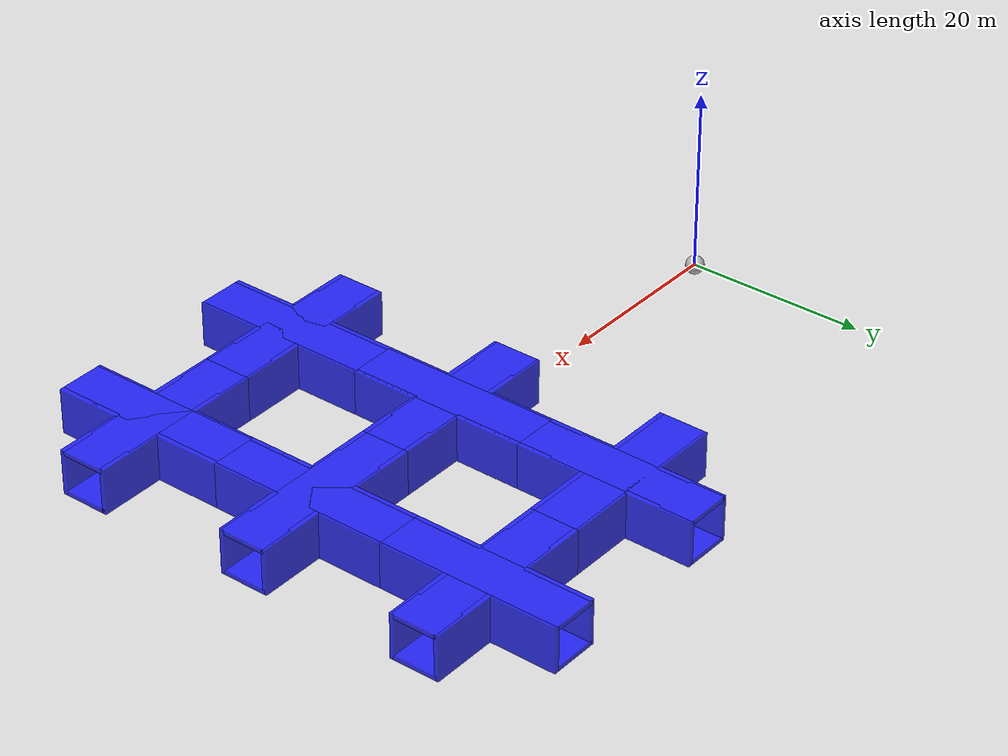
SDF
<?xml version="1.0" ?>
<sdf version="1.6">
  <world name="levels">
    <physics name="fast" type="ignored">
      <real_time_factor>0</real_time_factor>
    </physics>

    <plugin
      filename="ignition-gazebo-scene-broadcaster-system"
      name="gz::sim::systems::SceneBroadcaster">
    </plugin>

    <light type="directional" name="sun">
      <cast_shadows>true</cast_shadows>
      <pose>0 0 10 0 0 0</pose>
      <diffuse>0.8 0.8 0.8 1</diffuse>
      <specular>0.2 0.2 0.2 1</specular>
      <attenuation>
        <range>1000</range>
        <constant>0.9</constant>
        <linear>0.01</linear>
        <quadratic>0.001</quadratic>
      </attenuation>
      <direction>-0.5 0.1 -0.9</direction>
    </light>

    <model name="sphere">
      <pose>0 0 0 0 0 0</pose>
      <static>true</static>
      <link name="sphere_link">
        <visual name="visual">
          <geometry>
            <sphere>1</sphere>
          </geometry>
        </visual>
        <collision name="collision">
          <geometry>
            <sphere>1</sphere>
          </geometry>
        </collision>
      </link>
    </model>

    <model name="box">
      <pose>0 0 0 0 0 0</pose>
      <static>true</static>
      <link name="box_link">
        <visual name="visual">
          <geometry>
            <box>1 1 1</box>
          </geometry>
        </visual>
        <collision name="collision">
          <geometry>
            <box>1 1 1</box>
          </geometry>
        </collision>
      </link>
    </model>

    <!-- Grid tiles -->

    <model name="tile_0">
      <pose>40 -20 0 0 0 3.141592653589793</pose>
      <static>true</static>
      <link name="link">

        <collision name="collision_0">
          <pose>0 0 -0.25 0 0 0</pose>
          <geometry>
            <box><size>5 20 0.5</size></box>
          </geometry>
        </collision>
        <visual name="visual_0">
          <pose>0 0 -0.25 0 0 0</pose>
          <geometry>
            <box><size>5 20 0.5</size></box>
          </geometry>
          <material>
            <ambient>0 0 1 0.8</ambient>
            <diffuse>0 0 1 0.8</diffuse>
            <specular>1 1 1 0.8</specular>
          </material>
        </visual>

        <collision name="collision_1">
          <pose>0 0 4.25 0 0 0</pose>
          <geometry>
            <box><size>5 20 0.5</size></box>
          </geometry>
        </collision>
        <visual name="visual_1">
          <pose>0 0 4.25 0 0 0</pose>
          <geometry>
            <box><size>5 20 0.5</size></box>
          </geometry>
          <material>
            <ambient>0 0 1 0.8</ambient>
            <diffuse>0 0 1 0.8</diffuse>
            <specular>1 1 1 0.8</specular>
          </material>
        </visual>

        <collision name="collision_2">
          <pose>0 0 -0.25 0 0 1.57</pose>
          <geometry>
            <box><size>5 20 0.5</size></box>
          </geometry>
        </collision>
        <visual name="visual_2">
          <pose>0 0 -0.25 0 0 1.57</pose>
          <geometry>
            <box><size>5 20 0.5</size></box>
          </geometry>
          <material>
            <ambient>0 0 1 0.8</ambient>
            <diffuse>0 0 1 0.8</diffuse>
            <specular>1 1 1 0.8</specular>
          </material>
        </visual>

        <collision name="collision_3">
          <pose>0 0 4.25 0 0 1.57</pose>
          <geometry>
            <box><size>5 20 0.5</size></box>
          </geometry>
        </collision>
        <visual name="visual_3">
          <pose>0 0 4.25 0 0 1.57</pose>
          <geometry>
            <box><size>5 20 0.5</size></box>
          </geometry>
          <material>
            <ambient>0 0 1 0.8</ambient>
            <diffuse>0 0 1 0.8</diffuse>
            <specular>1 1 1 0.8</specular>
          </material>
        </visual>

        <collision name="collision_4">
          <pose>-2.5 6.25 2 3.14 -1.57 0</pose>
          <geometry>
            <box><size>5 7.5 0.5</size></box>
          </geometry>
        </collision>
        <visual name="visual_4">
          <pose>-2.5 6.25 2 3.14 -1.57 0</pose>
          <geometry>
            <box><size>5 7.5 0.5</size></box>
          </geometry>
          <material>
            <ambient>0 0 1 0.8</ambient>
            <diffuse>0 0 1 0.8</diffuse>
            <specular>1 1 1 0.8</specular>
          </material>
        </visual>

        <collision name="collision_5">
          <pose>2.5 6.25 2 3.14 -1.57 0</pose>
          <geometry>
            <box><size>5 7.5 0.5</size></box>
          </geometry>
        </collision>
        <visual name="visual_5">
          <pose>2.5 6.25 2 3.14 -1.57 0</pose>
          <geometry>
            <box><size>5 7.5 0.5</size></box>
          </geometry>
          <material>
            <ambient>0 0 1 0.8</ambient>
            <diffuse>0 0 1 0.8</diffuse>
            <specular>1 1 1 0.8</specular>
          </material>
        </visual>

        <collision name="collision_6">
          <pose>-2.5 -6.25 2 3.14 -1.57 0</pose>
          <geometry>
            <box><size>5 7.5 0.5</size></box>
          </geometry>
        </collision>
        <visual name="visual_6">
          <pose>-2.5 -6.25 2 3.14 -1.57 0</pose>
          <geometry>
            <box><size>5 7.5 0.5</size></box>
          </geometry>
          <material>
            <ambient>0 0 1 0.8</ambient>
            <diffuse>0 0 1 0.8</diffuse>
            <specular>1 1 1 0.8</specular>
          </material>
        </visual>

        <collision name="collision_7">
          <pose>2.5 -6.25 2 3.14 -1.57 0</pose>
          <geometry>
            <box><size>5 7.5 0.5</size></box>
          </geometry>
        </collision>
        <visual name="visual_7">
          <pose>2.5 -6.25 2 3.14 -1.57 0</pose>
          <geometry>
            <box><size>5 7.5 0.5</size></box>
          </geometry>
          <material>
            <ambient>0 0 1 0.8</ambient>
            <diffuse>0 0 1 0.8</diffuse>
            <specular>1 1 1 0.8</specular>
          </material>
        </visual>

        <collision name="collision_8">
          <pose>6.25 2.5 2 1.57 1.57 0</pose>
          <geometry>
            <box><size>5 7.5 0.5</size></box>
          </geometry>
        </collision>
        <visual name="visual_8">
          <pose>6.25 2.5 2 1.57 1.57 0</pose>
          <geometry>
            <box><size>5 7.5 0.5</size></box>
          </geometry>
          <material>
            <ambient>0 0 1 0.8</ambient>
            <diffuse>0 0 1 0.8</diffuse>
            <specular>1 1 1 0.8</specular>
          </material>
        </visual>

        <collision name="collision_9">
          <pose>-6.25 2.5 2 1.57 1.57 0</pose>
          <geometry>
            <box><size>5 7.5 0.5</size></box>
          </geometry>
        </collision>
        <visual name="visual_9">
          <pose>-6.25 2.5 2 1.57 1.57 0</pose>
          <geometry>
            <box><size>5 7.5 0.5</size></box>
          </geometry>
          <material>
            <ambient>0 0 1 0.8</ambient>
            <diffuse>0 0 1 0.8</diffuse>
            <specular>1 1 1 0.8</specular>
          </material>
        </visual>

        <collision name="collision_10">
          <pose>6.25 -2.5 2 1.57 1.57 0</pose>
          <geometry>
            <box><size>5 7.5 0.5</size></box>
          </geometry>
        </collision>
        <visual name="visual_10">
          <pose>6.25 -2.5 2 1.57 1.57 0</pose>
          <geometry>
            <box><size>5 7.5 0.5</size></box>
          </geometry>
          <material>
            <ambient>0 0 1 0.8</ambient>
            <diffuse>0 0 1 0.8</diffuse>
            <specular>1 1 1 0.8</specular>
          </material>
        </visual>

        <collision name="collision_11">
          <pose>-6.25 -2.5 2 1.57 1.57 0</pose>
          <geometry>
            <box><size>5 7.5 0.5</size></box>
          </geometry>
        </collision>
        <visual name="visual_11">
          <pose>-6.25 -2.5 2 1.57 1.57 0</pose>
          <geometry>
            <box><size>5 7.5 0.5</size></box>
          </geometry>
          <material>
            <ambient>0 0 1 0.8</ambient>
            <diffuse>0 0 1 0.8</diffuse>
            <specular>1 1 1 0.8</specular>
          </material>
        </visual>

      </link>
    </model>

    <model name="tile_1">
      <pose>40 0 0 0 0 0</pose>
      <static>true</static>
      <link name="link">

        <collision name="collision_0">
          <pose>0 0 -0.25 0 0 0</pose>
          <geometry>
            <box><size>5 20 0.5</size></box>
          </geometry>
        </collision>
        <visual name="visual_0">
          <pose>0 0 -0.25 0 0 0</pose>
          <geometry>
            <box><size>5 20 0.5</size></box>
          </geometry>
          <material>
            <ambient>0 0 1 0.8</ambient>
            <diffuse>0 0 1 0.8</diffuse>
            <specular>1 1 1 0.8</specular>
          </material>
        </visual>

        <collision name="collision_1">
          <pose>0 0 4.25 0 0 0</pose>
          <geometry>
            <box><size>5 20 0.5</size></box>
          </geometry>
        </collision>
        <visual name="visual_1">
          <pose>0 0 4.25 0 0 0</pose>
          <geometry>
            <box><size>5 20 0.5</size></box>
          </geometry>
          <material>
            <ambient>0 0 1 0.8</ambient>
            <diffuse>0 0 1 0.8</diffuse>
            <specular>1 1 1 0.8</specular>
          </material>
        </visual>

        <collision name="collision_2">
          <pose>0 0 -0.25 0 0 1.57</pose>
          <geometry>
            <box><size>5 20 0.5</size></box>
          </geometry>
        </collision>
        <visual name="visual_2">
          <pose>0 0 -0.25 0 0 1.57</pose>
          <geometry>
            <box><size>5 20 0.5</size></box>
          </geometry>
          <material>
            <ambient>0 0 1 0.8</ambient>
            <diffuse>0 0 1 0.8</diffuse>
            <specular>1 1 1 0.8</specular>
          </material>
        </visual>

        <collision name="collision_3">
          <pose>0 0 4.25 0 0 1.57</pose>
          <geometry>
            <box><size>5 20 0.5</size></box>
          </geometry>
        </collision>
        <visual name="visual_3">
          <pose>0 0 4.25 0 0 1.57</pose>
          <geometry>
            <box><size>5 20 0.5</size></box>
          </geometry>
          <material>
            <ambient>0 0 1 0.8</ambient>
            <diffuse>0 0 1 0.8</diffuse>
            <specular>1 1 1 0.8</specular>
          </material>
        </visual>

        <collision name="collision_4">
          <pose>-2.5 6.25 2 3.14 -1.57 0</pose>
          <geometry>
            <box><size>5 7.5 0.5</size></box>
          </geometry>
        </collision>
        <visual name="visual_4">
          <pose>-2.5 6.25 2 3.14 -1.57 0</pose>
          <geometry>
            <box><size>5 7.5 0.5</size></box>
          </geometry>
          <material>
            <ambient>0 0 1 0.8</ambient>
            <diffuse>0 0 1 0.8</diffuse>
            <specular>1 1 1 0.8</specular>
          </material>
        </visual>

        <collision name="collision_5">
          <pose>2.5 6.25 2 3.14 -1.57 0</pose>
          <geometry>
            <box><size>5 7.5 0.5</size></box>
          </geometry>
        </collision>
        <visual name="visual_5">
          <pose>2.5 6.25 2 3.14 -1.57 0</pose>
          <geometry>
            <box><size>5 7.5 0.5</size></box>
          </geometry>
          <material>
            <ambient>0 0 1 0.8</ambient>
            <diffuse>0 0 1 0.8</diffuse>
            <specular>1 1 1 0.8</specular>
          </material>
        </visual>

        <collision name="collision_6">
          <pose>-2.5 -6.25 2 3.14 -1.57 0</pose>
          <geometry>
            <box><size>5 7.5 0.5</size></box>
          </geometry>
        </collision>
        <visual name="visual_6">
          <pose>-2.5 -6.25 2 3.14 -1.57 0</pose>
          <geometry>
            <box><size>5 7.5 0.5</size></box>
          </geometry>
          <material>
            <ambient>0 0 1 0.8</ambient>
            <diffuse>0 0 1 0.8</diffuse>
            <specular>1 1 1 0.8</specular>
          </material>
        </visual>

        <collision name="collision_7">
          <pose>2.5 -6.25 2 3.14 -1.57 0</pose>
          <geometry>
            <box><size>5 7.5 0.5</size></box>
          </geometry>
        </collision>
        <visual name="visual_7">
          <pose>2.5 -6.25 2 3.14 -1.57 0</pose>
          <geometry>
            <box><size>5 7.5 0.5</size></box>
          </geometry>
          <material>
            <ambient>0 0 1 0.8</ambient>
            <diffuse>0 0 1 0.8</diffuse>
            <specular>1 1 1 0.8</specular>
          </material>
        </visual>

        <collision name="collision_8">
          <pose>6.25 2.5 2 1.57 1.57 0</pose>
          <geometry>
            <box><size>5 7.5 0.5</size></box>
          </geometry>
        </collision>
        <visual name="visual_8">
          <pose>6.25 2.5 2 1.57 1.57 0</pose>
          <geometry>
            <box><size>5 7.5 0.5</size></box>
          </geometry>
          <material>
            <ambient>0 0 1 0.8</ambient>
            <diffuse>0 0 1 0.8</diffuse>
            <specular>1 1 1 0.8</specular>
          </material>
        </visual>

        <collision name="collision_9">
          <pose>-6.25 2.5 2 1.57 1.57 0</pose>
          <geometry>
            <box><size>5 7.5 0.5</size></box>
          </geometry>
        </collision>
        <visual name="visual_9">
          <pose>-6.25 2.5 2 1.57 1.57 0</pose>
          <geometry>
            <box><size>5 7.5 0.5</size></box>
          </geometry>
          <material>
            <ambient>0 0 1 0.8</ambient>
            <diffuse>0 0 1 0.8</diffuse>
            <specular>1 1 1 0.8</specular>
          </material>
        </visual>

        <collision name="collision_10">
          <pose>6.25 -2.5 2 1.57 1.57 0</pose>
          <geometry>
            <box><size>5 7.5 0.5</size></box>
          </geometry>
        </collision>
        <visual name="visual_10">
          <pose>6.25 -2.5 2 1.57 1.57 0</pose>
          <geometry>
            <box><size>5 7.5 0.5</size></box>
          </geometry>
          <material>
            <ambient>0 0 1 0.8</ambient>
            <diffuse>0 0 1 0.8</diffuse>
            <specular>1 1 1 0.8</specular>
          </material>
        </visual>

        <collision name="collision_11">
          <pose>-6.25 -2.5 2 1.57 1.57 0</pose>
          <geometry>
            <box><size>5 7.5 0.5</size></box>
          </geometry>
        </collision>
        <visual name="visual_11">
          <pose>-6.25 -2.5 2 1.57 1.57 0</pose>
          <geometry>
            <box><size>5 7.5 0.5</size></box>
          </geometry>
          <material>
            <ambient>0 0 1 0.8</ambient>
            <diffuse>0 0 1 0.8</diffuse>
            <specular>1 1 1 0.8</specular>
          </material>
        </visual>

      </link>
    </model>

    <model name="tile_2">
      <pose>40 20 0 0 0 -1.5707963267948966</pose>
      <static>true</static>
      <link name="link">

        <collision name="collision_0">
          <pose>0 0 -0.25 0 0 0</pose>
          <geometry>
            <box><size>5 20 0.5</size></box>
          </geometry>
        </collision>
        <visual name="visual_0">
          <pose>0 0 -0.25 0 0 0</pose>
          <geometry>
            <box><size>5 20 0.5</size></box>
          </geometry>
          <material>
            <ambient>0 0 1 0.8</ambient>
            <diffuse>0 0 1 0.8</diffuse>
            <specular>1 1 1 0.8</specular>
          </material>
        </visual>

        <collision name="collision_1">
          <pose>0 0 4.25 0 0 0</pose>
          <geometry>
            <box><size>5 20 0.5</size></box>
          </geometry>
        </collision>
        <visual name="visual_1">
          <pose>0 0 4.25 0 0 0</pose>
          <geometry>
            <box><size>5 20 0.5</size></box>
          </geometry>
          <material>
            <ambient>0 0 1 0.8</ambient>
            <diffuse>0 0 1 0.8</diffuse>
            <specular>1 1 1 0.8</specular>
          </material>
        </visual>

        <collision name="collision_2">
          <pose>0 0 -0.25 0 0 1.57</pose>
          <geometry>
            <box><size>5 20 0.5</size></box>
          </geometry>
        </collision>
        <visual name="visual_2">
          <pose>0 0 -0.25 0 0 1.57</pose>
          <geometry>
            <box><size>5 20 0.5</size></box>
          </geometry>
          <material>
            <ambient>0 0 1 0.8</ambient>
            <diffuse>0 0 1 0.8</diffuse>
            <specular>1 1 1 0.8</specular>
          </material>
        </visual>

        <collision name="collision_3">
          <pose>0 0 4.25 0 0 1.57</pose>
          <geometry>
            <box><size>5 20 0.5</size></box>
          </geometry>
        </collision>
        <visual name="visual_3">
          <pose>0 0 4.25 0 0 1.57</pose>
          <geometry>
            <box><size>5 20 0.5</size></box>
          </geometry>
          <material>
            <ambient>0 0 1 0.8</ambient>
            <diffuse>0 0 1 0.8</diffuse>
            <specular>1 1 1 0.8</specular>
          </material>
        </visual>

        <collision name="collision_4">
          <pose>-2.5 6.25 2 3.14 -1.57 0</pose>
          <geometry>
            <box><size>5 7.5 0.5</size></box>
          </geometry>
        </collision>
        <visual name="visual_4">
          <pose>-2.5 6.25 2 3.14 -1.57 0</pose>
          <geometry>
            <box><size>5 7.5 0.5</size></box>
          </geometry>
          <material>
            <ambient>0 0 1 0.8</ambient>
            <diffuse>0 0 1 0.8</diffuse>
            <specular>1 1 1 0.8</specular>
          </material>
        </visual>

        <collision name="collision_5">
          <pose>2.5 6.25 2 3.14 -1.57 0</pose>
          <geometry>
            <box><size>5 7.5 0.5</size></box>
          </geometry>
        </collision>
        <visual name="visual_5">
          <pose>2.5 6.25 2 3.14 -1.57 0</pose>
          <geometry>
            <box><size>5 7.5 0.5</size></box>
          </geometry>
          <material>
            <ambient>0 0 1 0.8</ambient>
            <diffuse>0 0 1 0.8</diffuse>
            <specular>1 1 1 0.8</specular>
          </material>
        </visual>

        <collision name="collision_6">
          <pose>-2.5 -6.25 2 3.14 -1.57 0</pose>
          <geometry>
            <box><size>5 7.5 0.5</size></box>
          </geometry>
        </collision>
        <visual name="visual_6">
          <pose>-2.5 -6.25 2 3.14 -1.57 0</pose>
          <geometry>
            <box><size>5 7.5 0.5</size></box>
          </geometry>
          <material>
            <ambient>0 0 1 0.8</ambient>
            <diffuse>0 0 1 0.8</diffuse>
            <specular>1 1 1 0.8</specular>
          </material>
        </visual>

        <collision name="collision_7">
          <pose>2.5 -6.25 2 3.14 -1.57 0</pose>
          <geometry>
            <box><size>5 7.5 0.5</size></box>
          </geometry>
        </collision>
        <visual name="visual_7">
          <pose>2.5 -6.25 2 3.14 -1.57 0</pose>
          <geometry>
            <box><size>5 7.5 0.5</size></box>
          </geometry>
          <material>
            <ambient>0 0 1 0.8</ambient>
            <diffuse>0 0 1 0.8</diffuse>
            <specular>1 1 1 0.8</specular>
          </material>
        </visual>

        <collision name="collision_8">
          <pose>6.25 2.5 2 1.57 1.57 0</pose>
          <geometry>
            <box><size>5 7.5 0.5</size></box>
          </geometry>
        </collision>
        <visual name="visual_8">
          <pose>6.25 2.5 2 1.57 1.57 0</pose>
          <geometry>
            <box><size>5 7.5 0.5</size></box>
          </geometry>
          <material>
            <ambient>0 0 1 0.8</ambient>
            <diffuse>0 0 1 0.8</diffuse>
            <specular>1 1 1 0.8</specular>
          </material>
        </visual>

        <collision name="collision_9">
          <pose>-6.25 2.5 2 1.57 1.57 0</pose>
          <geometry>
            <box><size>5 7.5 0.5</size></box>
          </geometry>
        </collision>
        <visual name="visual_9">
          <pose>-6.25 2.5 2 1.57 1.57 0</pose>
          <geometry>
            <box><size>5 7.5 0.5</size></box>
          </geometry>
          <material>
            <ambient>0 0 1 0.8</ambient>
            <diffuse>0 0 1 0.8</diffuse>
            <specular>1 1 1 0.8</specular>
          </material>
        </visual>

        <collision name="collision_10">
          <pose>6.25 -2.5 2 1.57 1.57 0</pose>
          <geometry>
            <box><size>5 7.5 0.5</size></box>
          </geometry>
        </collision>
        <visual name="visual_10">
          <pose>6.25 -2.5 2 1.57 1.57 0</pose>
          <geometry>
            <box><size>5 7.5 0.5</size></box>
          </geometry>
          <material>
            <ambient>0 0 1 0.8</ambient>
            <diffuse>0 0 1 0.8</diffuse>
            <specular>1 1 1 0.8</specular>
          </material>
        </visual>

        <collision name="collision_11">
          <pose>-6.25 -2.5 2 1.57 1.57 0</pose>
          <geometry>
            <box><size>5 7.5 0.5</size></box>
          </geometry>
        </collision>
        <visual name="visual_11">
          <pose>-6.25 -2.5 2 1.57 1.57 0</pose>
          <geometry>
            <box><size>5 7.5 0.5</size></box>
          </geometry>
          <material>
            <ambient>0 0 1 0.8</ambient>
            <diffuse>0 0 1 0.8</diffuse>
            <specular>1 1 1 0.8</specular>
          </material>
        </visual>

      </link>
    </model>

    <model name="tile_3">
      <pose>60 -20 0 0 0 0</pose>
      <static>true</static>
      <link name="link">

        <collision name="collision_0">
          <pose>0 0 -0.25 0 0 0</pose>
          <geometry>
            <box><size>5 20 0.5</size></box>
          </geometry>
        </collision>
        <visual name="visual_0">
          <pose>0 0 -0.25 0 0 0</pose>
          <geometry>
            <box><size>5 20 0.5</size></box>
          </geometry>
          <material>
            <ambient>0 0 1 0.8</ambient>
            <diffuse>0 0 1 0.8</diffuse>
            <specular>1 1 1 0.8</specular>
          </material>
        </visual>

        <collision name="collision_1">
          <pose>0 0 4.25 0 0 0</pose>
          <geometry>
            <box><size>5 20 0.5</size></box>
          </geometry>
        </collision>
        <visual name="visual_1">
          <pose>0 0 4.25 0 0 0</pose>
          <geometry>
            <box><size>5 20 0.5</size></box>
          </geometry>
          <material>
            <ambient>0 0 1 0.8</ambient>
            <diffuse>0 0 1 0.8</diffuse>
            <specular>1 1 1 0.8</specular>
          </material>
        </visual>

        <collision name="collision_2">
          <pose>0 0 -0.25 0 0 1.57</pose>
          <geometry>
            <box><size>5 20 0.5</size></box>
          </geometry>
        </collision>
        <visual name="visual_2">
          <pose>0 0 -0.25 0 0 1.57</pose>
          <geometry>
            <box><size>5 20 0.5</size></box>
          </geometry>
          <material>
            <ambient>0 0 1 0.8</ambient>
            <diffuse>0 0 1 0.8</diffuse>
            <specular>1 1 1 0.8</specular>
          </material>
        </visual>

        <collision name="collision_3">
          <pose>0 0 4.25 0 0 1.57</pose>
          <geometry>
            <box><size>5 20 0.5</size></box>
          </geometry>
        </collision>
        <visual name="visual_3">
          <pose>0 0 4.25 0 0 1.57</pose>
          <geometry>
            <box><size>5 20 0.5</size></box>
          </geometry>
          <material>
            <ambient>0 0 1 0.8</ambient>
            <diffuse>0 0 1 0.8</diffuse>
            <specular>1 1 1 0.8</specular>
          </material>
        </visual>

        <collision name="collision_4">
          <pose>-2.5 6.25 2 3.14 -1.57 0</pose>
          <geometry>
            <box><size>5 7.5 0.5</size></box>
          </geometry>
        </collision>
        <visual name="visual_4">
          <pose>-2.5 6.25 2 3.14 -1.57 0</pose>
          <geometry>
            <box><size>5 7.5 0.5</size></box>
          </geometry>
          <material>
            <ambient>0 0 1 0.8</ambient>
            <diffuse>0 0 1 0.8</diffuse>
            <specular>1 1 1 0.8</specular>
          </material>
        </visual>

        <collision name="collision_5">
          <pose>2.5 6.25 2 3.14 -1.57 0</pose>
          <geometry>
            <box><size>5 7.5 0.5</size></box>
          </geometry>
        </collision>
        <visual name="visual_5">
          <pose>2.5 6.25 2 3.14 -1.57 0</pose>
          <geometry>
            <box><size>5 7.5 0.5</size></box>
          </geometry>
          <material>
            <ambient>0 0 1 0.8</ambient>
            <diffuse>0 0 1 0.8</diffuse>
            <specular>1 1 1 0.8</specular>
          </material>
        </visual>

        <collision name="collision_6">
          <pose>-2.5 -6.25 2 3.14 -1.57 0</pose>
          <geometry>
            <box><size>5 7.5 0.5</size></box>
          </geometry>
        </collision>
        <visual name="visual_6">
          <pose>-2.5 -6.25 2 3.14 -1.57 0</pose>
          <geometry>
            <box><size>5 7.5 0.5</size></box>
          </geometry>
          <material>
            <ambient>0 0 1 0.8</ambient>
            <diffuse>0 0 1 0.8</diffuse>
            <specular>1 1 1 0.8</specular>
          </material>
        </visual>

        <collision name="collision_7">
          <pose>2.5 -6.25 2 3.14 -1.57 0</pose>
          <geometry>
            <box><size>5 7.5 0.5</size></box>
          </geometry>
        </collision>
        <visual name="visual_7">
          <pose>2.5 -6.25 2 3.14 -1.57 0</pose>
          <geometry>
            <box><size>5 7.5 0.5</size></box>
          </geometry>
          <material>
            <ambient>0 0 1 0.8</ambient>
            <diffuse>0 0 1 0.8</diffuse>
            <specular>1 1 1 0.8</specular>
          </material>
        </visual>

        <collision name="collision_8">
          <pose>6.25 2.5 2 1.57 1.57 0</pose>
          <geometry>
            <box><size>5 7.5 0.5</size></box>
          </geometry>
        </collision>
        <visual name="visual_8">
          <pose>6.25 2.5 2 1.57 1.57 0</pose>
          <geometry>
            <box><size>5 7.5 0.5</size></box>
          </geometry>
          <material>
            <ambient>0 0 1 0.8</ambient>
            <diffuse>0 0 1 0.8</diffuse>
            <specular>1 1 1 0.8</specular>
          </material>
        </visual>

        <collision name="collision_9">
          <pose>-6.25 2.5 2 1.57 1.57 0</pose>
          <geometry>
            <box><size>5 7.5 0.5</size></box>
          </geometry>
        </collision>
        <visual name="visual_9">
          <pose>-6.25 2.5 2 1.57 1.57 0</pose>
          <geometry>
            <box><size>5 7.5 0.5</size></box>
          </geometry>
          <material>
            <ambient>0 0 1 0.8</ambient>
            <diffuse>0 0 1 0.8</diffuse>
            <specular>1 1 1 0.8</specular>
          </material>
        </visual>

        <collision name="collision_10">
          <pose>6.25 -2.5 2 1.57 1.57 0</pose>
          <geometry>
            <box><size>5 7.5 0.5</size></box>
          </geometry>
        </collision>
        <visual name="visual_10">
          <pose>6.25 -2.5 2 1.57 1.57 0</pose>
          <geometry>
            <box><size>5 7.5 0.5</size></box>
          </geometry>
          <material>
            <ambient>0 0 1 0.8</ambient>
            <diffuse>0 0 1 0.8</diffuse>
            <specular>1 1 1 0.8</specular>
          </material>
        </visual>

        <collision name="collision_11">
          <pose>-6.25 -2.5 2 1.57 1.57 0</pose>
          <geometry>
            <box><size>5 7.5 0.5</size></box>
          </geometry>
        </collision>
        <visual name="visual_11">
          <pose>-6.25 -2.5 2 1.57 1.57 0</pose>
          <geometry>
            <box><size>5 7.5 0.5</size></box>
          </geometry>
          <material>
            <ambient>0 0 1 0.8</ambient>
            <diffuse>0 0 1 0.8</diffuse>
            <specular>1 1 1 0.8</specular>
          </material>
        </visual>

      </link>
    </model>

    <model name="tile_4">
      <pose>60 0 0 0 0 3.141592653589793</pose>
      <static>true</static>
      <link name="link">

        <collision name="collision_0">
          <pose>0 0 -0.25 0 0 0</pose>
          <geometry>
            <box><size>5 20 0.5</size></box>
          </geometry>
        </collision>
        <visual name="visual_0">
          <pose>0 0 -0.25 0 0 0</pose>
          <geometry>
            <box><size>5 20 0.5</size></box>
          </geometry>
          <material>
            <ambient>0 0 1 0.8</ambient>
            <diffuse>0 0 1 0.8</diffuse>
            <specular>1 1 1 0.8</specular>
          </material>
        </visual>

        <collision name="collision_1">
          <pose>0 0 4.25 0 0 0</pose>
          <geometry>
            <box><size>5 20 0.5</size></box>
          </geometry>
        </collision>
        <visual name="visual_1">
          <pose>0 0 4.25 0 0 0</pose>
          <geometry>
            <box><size>5 20 0.5</size></box>
          </geometry>
          <material>
            <ambient>0 0 1 0.8</ambient>
            <diffuse>0 0 1 0.8</diffuse>
            <specular>1 1 1 0.8</specular>
          </material>
        </visual>

        <collision name="collision_2">
          <pose>0 0 -0.25 0 0 1.57</pose>
          <geometry>
            <box><size>5 20 0.5</size></box>
          </geometry>
        </collision>
        <visual name="visual_2">
          <pose>0 0 -0.25 0 0 1.57</pose>
          <geometry>
            <box><size>5 20 0.5</size></box>
          </geometry>
          <material>
            <ambient>0 0 1 0.8</ambient>
            <diffuse>0 0 1 0.8</diffuse>
            <specular>1 1 1 0.8</specular>
          </material>
        </visual>

        <collision name="collision_3">
          <pose>0 0 4.25 0 0 1.57</pose>
          <geometry>
            <box><size>5 20 0.5</size></box>
          </geometry>
        </collision>
        <visual name="visual_3">
          <pose>0 0 4.25 0 0 1.57</pose>
          <geometry>
            <box><size>5 20 0.5</size></box>
          </geometry>
          <material>
            <ambient>0 0 1 0.8</ambient>
            <diffuse>0 0 1 0.8</diffuse>
            <specular>1 1 1 0.8</specular>
          </material>
        </visual>

        <collision name="collision_4">
          <pose>-2.5 6.25 2 3.14 -1.57 0</pose>
          <geometry>
            <box><size>5 7.5 0.5</size></box>
          </geometry>
        </collision>
        <visual name="visual_4">
          <pose>-2.5 6.25 2 3.14 -1.57 0</pose>
          <geometry>
            <box><size>5 7.5 0.5</size></box>
          </geometry>
          <material>
            <ambient>0 0 1 0.8</ambient>
            <diffuse>0 0 1 0.8</diffuse>
            <specular>1 1 1 0.8</specular>
          </material>
        </visual>

        <collision name="collision_5">
          <pose>2.5 6.25 2 3.14 -1.57 0</pose>
          <geometry>
            <box><size>5 7.5 0.5</size></box>
          </geometry>
        </collision>
        <visual name="visual_5">
          <pose>2.5 6.25 2 3.14 -1.57 0</pose>
          <geometry>
            <box><size>5 7.5 0.5</size></box>
          </geometry>
          <material>
            <ambient>0 0 1 0.8</ambient>
            <diffuse>0 0 1 0.8</diffuse>
            <specular>1 1 1 0.8</specular>
          </material>
        </visual>

        <collision name="collision_6">
          <pose>-2.5 -6.25 2 3.14 -1.57 0</pose>
          <geometry>
            <box><size>5 7.5 0.5</size></box>
          </geometry>
        </collision>
        <visual name="visual_6">
          <pose>-2.5 -6.25 2 3.14 -1.57 0</pose>
          <geometry>
            <box><size>5 7.5 0.5</size></box>
          </geometry>
          <material>
            <ambient>0 0 1 0.8</ambient>
            <diffuse>0 0 1 0.8</diffuse>
            <specular>1 1 1 0.8</specular>
          </material>
        </visual>

        <collision name="collision_7">
          <pose>2.5 -6.25 2 3.14 -1.57 0</pose>
          <geometry>
            <box><size>5 7.5 0.5</size></box>
          </geometry>
        </collision>
        <visual name="visual_7">
          <pose>2.5 -6.25 2 3.14 -1.57 0</pose>
          <geometry>
            <box><size>5 7.5 0.5</size></box>
          </geometry>
          <material>
            <ambient>0 0 1 0.8</ambient>
            <diffuse>0 0 1 0.8</diffuse>
            <specular>1 1 1 0.8</specular>
          </material>
        </visual>

        <collision name="collision_8">
          <pose>6.25 2.5 2 1.57 1.57 0</pose>
          <geometry>
            <box><size>5 7.5 0.5</size></box>
          </geometry>
        </collision>
        <visual name="visual_8">
          <pose>6.25 2.5 2 1.57 1.57 0</pose>
          <geometry>
            <box><size>5 7.5 0.5</size></box>
          </geometry>
          <material>
            <ambient>0 0 1 0.8</ambient>
            <diffuse>0 0 1 0.8</diffuse>
            <specular>1 1 1 0.8</specular>
          </material>
        </visual>

        <collision name="collision_9">
          <pose>-6.25 2.5 2 1.57 1.57 0</pose>
          <geometry>
            <box><size>5 7.5 0.5</size></box>
          </geometry>
        </collision>
        <visual name="visual_9">
          <pose>-6.25 2.5 2 1.57 1.57 0</pose>
          <geometry>
            <box><size>5 7.5 0.5</size></box>
          </geometry>
          <material>
            <ambient>0 0 1 0.8</ambient>
            <diffuse>0 0 1 0.8</diffuse>
            <specular>1 1 1 0.8</specular>
          </material>
        </visual>

        <collision name="collision_10">
          <pose>6.25 -2.5 2 1.57 1.57 0</pose>
          <geometry>
            <box><size>5 7.5 0.5</size></box>
          </geometry>
        </collision>
        <visual name="visual_10">
          <pose>6.25 -2.5 2 1.57 1.57 0</pose>
          <geometry>
            <box><size>5 7.5 0.5</size></box>
          </geometry>
          <material>
            <ambient>0 0 1 0.8</ambient>
            <diffuse>0 0 1 0.8</diffuse>
            <specular>1 1 1 0.8</specular>
          </material>
        </visual>

        <collision name="collision_11">
          <pose>-6.25 -2.5 2 1.57 1.57 0</pose>
          <geometry>
            <box><size>5 7.5 0.5</size></box>
          </geometry>
        </collision>
        <visual name="visual_11">
          <pose>-6.25 -2.5 2 1.57 1.57 0</pose>
          <geometry>
            <box><size>5 7.5 0.5</size></box>
          </geometry>
          <material>
            <ambient>0 0 1 0.8</ambient>
            <diffuse>0 0 1 0.8</diffuse>
            <specular>1 1 1 0.8</specular>
          </material>
        </visual>

      </link>
    </model>

    <model name="tile_5">
      <pose>60 20 0 0 0 3.141592653589793</pose>
      <static>true</static>
      <link name="link">

        <collision name="collision_0">
          <pose>0 0 -0.25 0 0 0</pose>
          <geometry>
            <box><size>5 20 0.5</size></box>
          </geometry>
        </collision>
        <visual name="visual_0">
          <pose>0 0 -0.25 0 0 0</pose>
          <geometry>
            <box><size>5 20 0.5</size></box>
          </geometry>
          <material>
            <ambient>0 0 1 0.8</ambient>
            <diffuse>0 0 1 0.8</diffuse>
            <specular>1 1 1 0.8</specular>
          </material>
        </visual>

        <collision name="collision_1">
          <pose>0 0 4.25 0 0 0</pose>
          <geometry>
            <box><size>5 20 0.5</size></box>
          </geometry>
        </collision>
        <visual name="visual_1">
          <pose>0 0 4.25 0 0 0</pose>
          <geometry>
            <box><size>5 20 0.5</size></box>
          </geometry>
          <material>
            <ambient>0 0 1 0.8</ambient>
            <diffuse>0 0 1 0.8</diffuse>
            <specular>1 1 1 0.8</specular>
          </material>
        </visual>

        <collision name="collision_2">
          <pose>0 0 -0.25 0 0 1.57</pose>
          <geometry>
            <box><size>5 20 0.5</size></box>
          </geometry>
        </collision>
        <visual name="visual_2">
          <pose>0 0 -0.25 0 0 1.57</pose>
          <geometry>
            <box><size>5 20 0.5</size></box>
          </geometry>
          <material>
            <ambient>0 0 1 0.8</ambient>
            <diffuse>0 0 1 0.8</diffuse>
            <specular>1 1 1 0.8</specular>
          </material>
        </visual>

        <collision name="collision_3">
          <pose>0 0 4.25 0 0 1.57</pose>
          <geometry>
            <box><size>5 20 0.5</size></box>
          </geometry>
        </collision>
        <visual name="visual_3">
          <pose>0 0 4.25 0 0 1.57</pose>
          <geometry>
            <box><size>5 20 0.5</size></box>
          </geometry>
          <material>
            <ambient>0 0 1 0.8</ambient>
            <diffuse>0 0 1 0.8</diffuse>
            <specular>1 1 1 0.8</specular>
          </material>
        </visual>

        <collision name="collision_4">
          <pose>-2.5 6.25 2 3.14 -1.57 0</pose>
          <geometry>
            <box><size>5 7.5 0.5</size></box>
          </geometry>
        </collision>
        <visual name="visual_4">
          <pose>-2.5 6.25 2 3.14 -1.57 0</pose>
          <geometry>
            <box><size>5 7.5 0.5</size></box>
          </geometry>
          <material>
            <ambient>0 0 1 0.8</ambient>
            <diffuse>0 0 1 0.8</diffuse>
            <specular>1 1 1 0.8</specular>
          </material>
        </visual>

        <collision name="collision_5">
          <pose>2.5 6.25 2 3.14 -1.57 0</pose>
          <geometry>
            <box><size>5 7.5 0.5</size></box>
          </geometry>
        </collision>
        <visual name="visual_5">
          <pose>2.5 6.25 2 3.14 -1.57 0</pose>
          <geometry>
            <box><size>5 7.5 0.5</size></box>
          </geometry>
          <material>
            <ambient>0 0 1 0.8</ambient>
            <diffuse>0 0 1 0.8</diffuse>
            <specular>1 1 1 0.8</specular>
          </material>
        </visual>

        <collision name="collision_6">
          <pose>-2.5 -6.25 2 3.14 -1.57 0</pose>
          <geometry>
            <box><size>5 7.5 0.5</size></box>
          </geometry>
        </collision>
        <visual name="visual_6">
          <pose>-2.5 -6.25 2 3.14 -1.57 0</pose>
          <geometry>
            <box><size>5 7.5 0.5</size></box>
          </geometry>
          <material>
            <ambient>0 0 1 0.8</ambient>
            <diffuse>0 0 1 0.8</diffuse>
            <specular>1 1 1 0.8</specular>
          </material>
        </visual>

        <collision name="collision_7">
          <pose>2.5 -6.25 2 3.14 -1.57 0</pose>
          <geometry>
            <box><size>5 7.5 0.5</size></box>
          </geometry>
        </collision>
        <visual name="visual_7">
          <pose>2.5 -6.25 2 3.14 -1.57 0</pose>
          <geometry>
            <box><size>5 7.5 0.5</size></box>
          </geometry>
          <material>
            <ambient>0 0 1 0.8</ambient>
            <diffuse>0 0 1 0.8</diffuse>
            <specular>1 1 1 0.8</specular>
          </material>
        </visual>

        <collision name="collision_8">
          <pose>6.25 2.5 2 1.57 1.57 0</pose>
          <geometry>
            <box><size>5 7.5 0.5</size></box>
          </geometry>
        </collision>
        <visual name="visual_8">
          <pose>6.25 2.5 2 1.57 1.57 0</pose>
          <geometry>
            <box><size>5 7.5 0.5</size></box>
          </geometry>
          <material>
            <ambient>0 0 1 0.8</ambient>
            <diffuse>0 0 1 0.8</diffuse>
            <specular>1 1 1 0.8</specular>
          </material>
        </visual>

        <collision name="collision_9">
          <pose>-6.25 2.5 2 1.57 1.57 0</pose>
          <geometry>
            <box><size>5 7.5 0.5</size></box>
          </geometry>
        </collision>
        <visual name="visual_9">
          <pose>-6.25 2.5 2 1.57 1.57 0</pose>
          <geometry>
            <box><size>5 7.5 0.5</size></box>
          </geometry>
          <material>
            <ambient>0 0 1 0.8</ambient>
            <diffuse>0 0 1 0.8</diffuse>
            <specular>1 1 1 0.8</specular>
          </material>
        </visual>

        <collision name="collision_10">
          <pose>6.25 -2.5 2 1.57 1.57 0</pose>
          <geometry>
            <box><size>5 7.5 0.5</size></box>
          </geometry>
        </collision>
        <visual name="visual_10">
          <pose>6.25 -2.5 2 1.57 1.57 0</pose>
          <geometry>
            <box><size>5 7.5 0.5</size></box>
          </geometry>
          <material>
            <ambient>0 0 1 0.8</ambient>
            <diffuse>0 0 1 0.8</diffuse>
            <specular>1 1 1 0.8</specular>
          </material>
        </visual>

        <collision name="collision_11">
          <pose>-6.25 -2.5 2 1.57 1.57 0</pose>
          <geometry>
            <box><size>5 7.5 0.5</size></box>
          </geometry>
        </collision>
        <visual name="visual_11">
          <pose>-6.25 -2.5 2 1.57 1.57 0</pose>
          <geometry>
            <box><size>5 7.5 0.5</size></box>
          </geometry>
          <material>
            <ambient>0 0 1 0.8</ambient>
            <diffuse>0 0 1 0.8</diffuse>
            <specular>1 1 1 0.8</specular>
          </material>
        </visual>

      </link>
    </model>

  <plugin name="gz::sim" filename="dummy">
    <level name="level1">
      <pose>40 0 2.5 0 0 0</pose>
      <geometry>
        <box>
          <size>30 30 10</size>
        </box>
      </geometry>
      <buffer>5</buffer>
      <ref>tile_1</ref>
    </level>

    <level name="level2">
      <pose>40 20 2.5 0 0 0</pose>
      <geometry>
        <box>
          <size>30 30 10</size>
        </box>
      </geometry>
      <buffer>5</buffer>
      <ref>tile_2</ref>
    </level>

    <level name="level3">
      <pose>60 -20 2.5 0 0 0</pose>
      <geometry>
        <box>
          <size>30 30 10</size>
        </box>
      </geometry>
      <buffer>5</buffer>
      <ref>tile_3</ref>
    </level>

    <level name="level4">
      <pose>60 0 2.5 0 0 0</pose>
      <geometry>
        <box>
          <size>30 30 10</size>
        </box>
      </geometry>
      <buffer>5</buffer>
      <ref>tile_4</ref>
    </level>

    <level name="level5">
      <pose>60 20 2.5 0 0 0</pose>
      <geometry>
        <box>
          <size>30 30 10</size>
        </box>
      </geometry>
      <buffer>5</buffer>
      <ref>tile_5</ref>
    </level>

  </plugin>

  </world>
</sdf>
